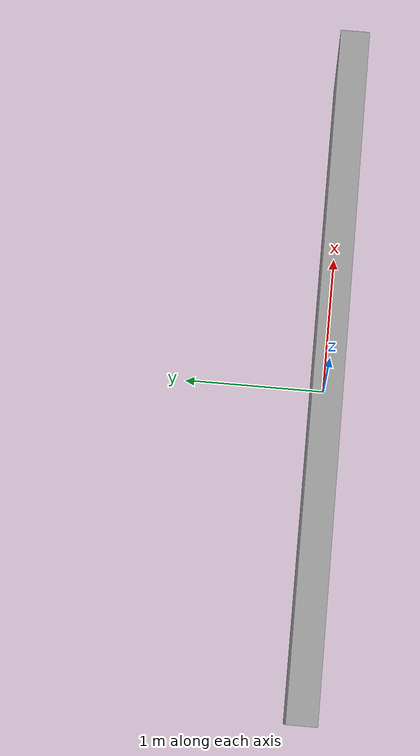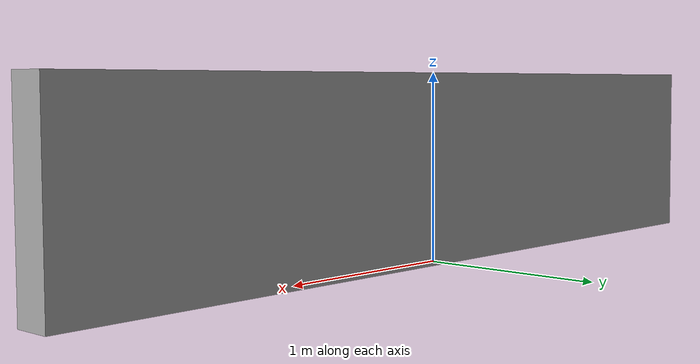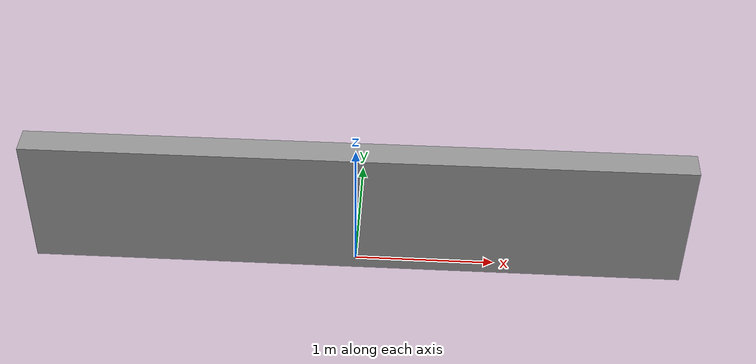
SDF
<?xml version="1.0" ?>
<sdf version="1.5">
  <model name="long_wall">
    <static>true</static>
    <link name="link">
      <collision name="collision">
        <geometry>
          <mesh>
            <uri>model://long_wall/meshes/long_wall.obj</uri>
            <scale>1 1 1</scale>
          </mesh>
        </geometry>
        <surface>
          <friction>
            <ode>
              <mu>100</mu>
              <mu2>50</mu2>
            </ode>
          </friction>
        </surface>
      </collision>
      <visual name="visual">
        <geometry>
          <mesh>
            <uri>model://long_wall/meshes/long_wall.obj</uri>
            <scale>1 1 1</scale>
          </mesh>
        </geometry>
        <material>
          <script>
            <uri>file://media/materials/scripts/gazebo.material</uri>
            <name>Gazebo/Grey</name>
          </script>
        </material>
      </visual>
    </link>
  </model>
</sdf>
